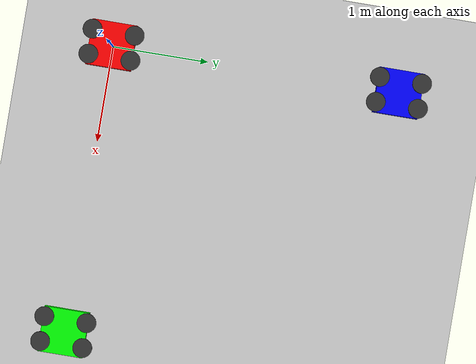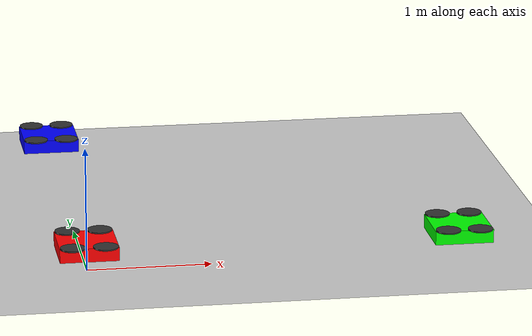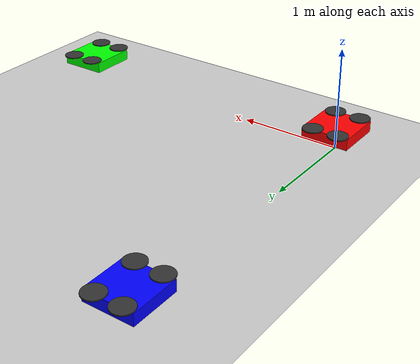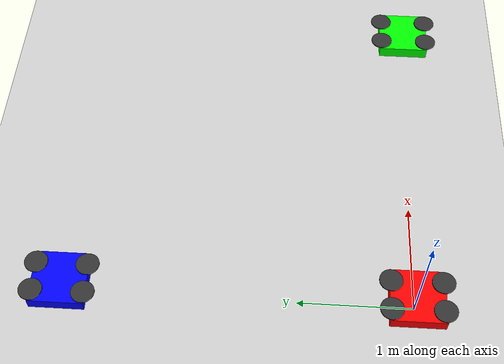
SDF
<?xml version="1.0"?>
<sdf version="1.8">
    <world name="default">

        <!-- Physics -->
        <physics name="4ms" type="ignored">
            <max_step_size>0.004</max_step_size>
            <real_time_factor>1.0</real_time_factor>
        </physics>

        <!-- Required World Plugins (Fortress naming) -->
        <plugin filename="ignition-gazebo-physics-system"
            name="ignition::gazebo::systems::Physics" />
        <plugin filename="ignition-gazebo-scene-broadcaster-system"
            name="ignition::gazebo::systems::SceneBroadcaster" />
        <plugin filename="ignition-gazebo-user-commands-system"
            name="ignition::gazebo::systems::UserCommands" />

        <!-- Lighting -->
        <light type="directional" name="sun">
            <cast_shadows>true</cast_shadows>
            <pose>0 0 10 0 0 0</pose>
            <diffuse>0.8 0.8 0.8 1</diffuse>
            <specular>0.2 0.2 0.2 1</specular>
            <direction>-0.5 0.1 -0.9</direction>
        </light>

        <!-- Ground Plane -->
        <model name="ground_plane">
            <static>true</static>
            <link name="link">
                <collision name="collision">
                    <geometry>
                        <plane>
                            <normal>0 0 1</normal>
                            <size>100 100</size>
                        </plane>
                    </geometry>
                </collision>
                <visual name="visual">
                    <geometry>
                        <plane>
                            <normal>0 0 1</normal>
                            <size>100 100</size>
                        </plane>
                    </geometry>
                    <material>
                        <ambient>0.8 0.8 0.8 1</ambient>
                    </material>
                </visual>
            </link>
        </model>

        <!-- ==================== DRONE 1 (RED) ==================== -->
        <model name="drone1">
            <pose>0 0 0.2 0 0 0</pose>

            <link name="base_link">
                <inertial>
                    <mass>1.5</mass>
                    <inertia>
                        <ixx>0.0291</ixx>
                        <ixy>0</ixy>
                        <ixz>0</ixz>
                        <iyy>0.0291</iyy>
                        <iyz>0</iyz>
                        <izz>0.0552</izz>
                    </inertia>
                </inertial>
                <collision name="collision">
                    <geometry>
                        <box>
                            <size>0.47 0.47 0.11</size>
                        </box>
                    </geometry>
                </collision>
                <visual name="visual">
                    <geometry>
                        <box>
                            <size>0.47 0.47 0.11</size>
                        </box>
                    </geometry>
                    <material>
                        <ambient>1 0 0 1</ambient>
                        <diffuse>1 0 0 1</diffuse>
                    </material>
                </visual>
            </link>

            <!-- Rotor 0 (Front-Right, CCW) -->
            <link name="rotor_0">
                <pose>0.13 -0.22 0.06 0 0 0</pose>
                <inertial>
                    <mass>0.005</mass>
                    <inertia>
                        <ixx>9.75e-07</ixx>
                        <ixy>0</ixy>
                        <ixz>0</ixz>
                        <iyy>8.13545e-05</iyy>
                        <iyz>0
                        </iyz>
                        <izz>8.22545e-05</izz>
                    </inertia>
                </inertial>
                <collision name="collision">
                    <geometry>
                        <cylinder>
                            <radius>0.1</radius>
                            <length>0.01
                            </length>
                        </cylinder>
                    </geometry>
                </collision>
                <visual name="visual">
                    <geometry>
                        <cylinder>
                            <radius>0.1</radius>
                            <length>0.01</length>
                        </cylinder>
                    </geometry>
                    <material>
                        <ambient>0.2 0.2 0.2 1</ambient>
                    </material>
                </visual>
            </link>
            <joint name="rotor_0_joint" type="revolute">
                <parent>base_link</parent>
                <child>rotor_0</child>
                <axis>
                    <xyz>0 0 1</xyz>
                    <limit>
                        <lower>-1e16</lower>
                        <upper>1e16</upper>
                    </limit>
                </axis>
            </joint>

            <!-- Rotor 1 (Rear-Left, CCW) -->
            <link name="rotor_1">
                <pose>-0.13 0.22 0.06 0 0 0</pose>
                <inertial>
                    <mass>0.005</mass>
                    <inertia>
                        <ixx>9.75e-07</ixx>
                        <ixy>0</ixy>
                        <ixz>0</ixz>
                        <iyy>8.13545e-05</iyy>
                        <iyz>0
                        </iyz>
                        <izz>8.22545e-05</izz>
                    </inertia>
                </inertial>
                <collision name="collision">
                    <geometry>
                        <cylinder>
                            <radius>0.1</radius>
                            <length>0.01
                            </length>
                        </cylinder>
                    </geometry>
                </collision>
                <visual name="visual">
                    <geometry>
                        <cylinder>
                            <radius>0.1</radius>
                            <length>0.01</length>

                        </cylinder>
                    </geometry>
                    <material>
                        <ambient>0.2 0.2 0.2 1</ambient>
                    </material>
                </visual>
            </link>
            <joint name="rotor_1_joint" type="revolute">
                <parent>base_link</parent>
                <child>rotor_1</child>
                <axis>
                    <xyz>0 0 1</xyz>
                    <limit>
                        <lower>-1e16</lower>
                        <upper>1e16</upper>
                    </limit>
                </axis>
            </joint>

            <!-- Rotor 2 (Front-Left, CW) -->
            <link name="rotor_2">
                <pose>0.13 0.22 0.06 0 0 0</pose>
                <inertial>
                    <mass>0.005</mass>
                    <inertia>
                        <ixx>9.75e-07</ixx>
                        <ixy>0</ixy>
                        <ixz>0</ixz>
                        <iyy>8.13545e-05</iyy>
                        <iyz>0
                        </iyz>
                        <izz>8.22545e-05</izz>
                    </inertia>
                </inertial>
                <collision name="collision">
                    <geometry>
                        <cylinder>
                            <radius>0.1</radius>
                            <length>0.01
                            </length>
                        </cylinder>
                    </geometry>
                </collision>
                <visual name="visual">
                    <geometry>
                        <cylinder>
                            <radius>0.1</radius>
                            <length>0.01</length>

                        </cylinder>
                    </geometry>
                    <material>
                        <ambient>0.2 0.2 0.2 1</ambient>
                    </material>
                </visual>
            </link>
            <joint name="rotor_2_joint" type="revolute">
                <parent>base_link</parent>
                <child>rotor_2</child>
                <axis>
                    <xyz>0 0 1</xyz>
                    <limit>
                        <lower>-1e16</lower>
                        <upper>1e16</upper>
                    </limit>
                </axis>
            </joint>

            <!-- Rotor 3 (Rear-Right, CW) -->
            <link name="rotor_3">
                <pose>-0.13 -0.22 0.06 0 0 0</pose>
                <inertial>
                    <mass>0.005</mass>
                    <inertia>
                        <ixx>9.75e-07</ixx>
                        <ixy>0</ixy>
                        <ixz>0</ixz>
                        <iyy>8.13545e-05</iyy>
                        <iyz>0
                        </iyz>
                        <izz>8.22545e-05</izz>
                    </inertia>
                </inertial>
                <collision name="collision">
                    <geometry>
                        <cylinder>
                            <radius>0.1</radius>
                            <length>0.01
                            </length>
                        </cylinder>
                    </geometry>
                </collision>
                <visual name="visual">
                    <geometry>
                        <cylinder>
                            <radius>0.1</radius>
                            <length>0.01</length>

                        </cylinder>
                    </geometry>
                    <material>
                        <ambient>0.2 0.2 0.2 1</ambient>
                    </material>
                </visual>
            </link>
            <joint name="rotor_3_joint" type="revolute">
                <parent>base_link</parent>
                <child>rotor_3</child>
                <axis>
                    <xyz>0 0 1</xyz>
                    <limit>
                        <lower>-1e16</lower>
                        <upper>1e16</upper>
                    </limit>
                </axis>
            </joint>

            <!-- Motor Model Plugins (one per rotor) -->
            <plugin filename="ignition-gazebo-multicopter-motor-model-system"
                name="ignition::gazebo::systems::MulticopterMotorModel">
                <jointName>rotor_0_joint</jointName>
                <linkName>rotor_0</linkName>
                <turningDirection>ccw</turningDirection>
                <timeConstantUp>0.0125</timeConstantUp>
                <timeConstantDown>0.025
                </timeConstantDown>
                <maxRotVelocity>800.0</maxRotVelocity>
                <motorConstant>8.54858e-06</motorConstant>
                <momentConstant>0.016
                </momentConstant>
                <commandSubTopic>command/motor_speed</commandSubTopic>
                <motorNumber>0</motorNumber>
                <rotorDragCoefficient>8.06428e-05</rotorDragCoefficient>
                <rollingMomentCoefficient>1e-06</rollingMomentCoefficient>

                <rotorVelocitySlowdownSim>10</rotorVelocitySlowdownSim>
                <motorType>velocity</motorType>
            </plugin>
            <plugin filename="ignition-gazebo-multicopter-motor-model-system"
                name="ignition::gazebo::systems::MulticopterMotorModel">
                <jointName>rotor_1_joint</jointName>
                <linkName>rotor_1</linkName>
                <turningDirection>ccw</turningDirection>
                <timeConstantUp>0.0125</timeConstantUp>
                <timeConstantDown>0.025
                </timeConstantDown>
                <maxRotVelocity>800.0</maxRotVelocity>
                <motorConstant>8.54858e-06</motorConstant>
                <momentConstant>0.016
                </momentConstant>
                <commandSubTopic>command/motor_speed</commandSubTopic>
                <motorNumber>1</motorNumber>
                <rotorDragCoefficient>8.06428e-05</rotorDragCoefficient>
                <rollingMomentCoefficient>1e-06</rollingMomentCoefficient>

                <rotorVelocitySlowdownSim>10</rotorVelocitySlowdownSim>
                <motorType>velocity</motorType>
            </plugin>
            <plugin filename="ignition-gazebo-multicopter-motor-model-system"
                name="ignition::gazebo::systems::MulticopterMotorModel">
                <jointName>rotor_2_joint</jointName>
                <linkName>rotor_2</linkName>
                <turningDirection>cw</turningDirection>
                <timeConstantUp>0.0125</timeConstantUp>
                <timeConstantDown>0.025
                </timeConstantDown>
                <maxRotVelocity>800.0</maxRotVelocity>
                <motorConstant>8.54858e-06</motorConstant>
                <momentConstant>0.016
                </momentConstant>
                <commandSubTopic>command/motor_speed</commandSubTopic>
                <motorNumber>2</motorNumber>
                <rotorDragCoefficient>8.06428e-05</rotorDragCoefficient>
                <rollingMomentCoefficient>1e-06</rollingMomentCoefficient>

                <rotorVelocitySlowdownSim>10</rotorVelocitySlowdownSim>
                <motorType>velocity</motorType>
            </plugin>
            <plugin filename="ignition-gazebo-multicopter-motor-model-system"
                name="ignition::gazebo::systems::MulticopterMotorModel">
                <jointName>rotor_3_joint</jointName>
                <linkName>rotor_3</linkName>
                <turningDirection>cw</turningDirection>
                <timeConstantUp>0.0125</timeConstantUp>
                <timeConstantDown>0.025
                </timeConstantDown>
                <maxRotVelocity>800.0</maxRotVelocity>
                <motorConstant>8.54858e-06</motorConstant>
                <momentConstant>0.016
                </momentConstant>
                <commandSubTopic>command/motor_speed</commandSubTopic>
                <motorNumber>3</motorNumber>
                <rotorDragCoefficient>8.06428e-05</rotorDragCoefficient>
                <rollingMomentCoefficient>1e-06</rollingMomentCoefficient>

                <rotorVelocitySlowdownSim>10</rotorVelocitySlowdownSim>
                <motorType>velocity</motorType>
            </plugin>

            <!-- Velocity Controller -->
            <plugin filename="ignition-gazebo-multicopter-control-system"
                name="ignition::gazebo::systems::MulticopterVelocityControl">
                <robotNamespace>drone1</robotNamespace>
                <commandSubTopic>cmd_vel</commandSubTopic>
                <enableSubTopic>enable</enableSubTopic>
                <comLinkName>base_link</comLinkName>
                <velocityGain>2.7 2.7 2.7</velocityGain>
                <attitudeGain>2 3 0.15</attitudeGain>
                <angularRateGain>0.4 0.52 0.18</angularRateGain>
                <maximumLinearVelocity>5 5 5</maximumLinearVelocity>
                <maximumAngularVelocity>3 3 3</maximumAngularVelocity>
                <rotorConfiguration>
                    <rotor>
                        <jointName>rotor_0_joint</jointName>
                        <forceConstant>8.54858e-06
                        </forceConstant>
                        <momentConstant>0.016</momentConstant>
                        <direction>1</direction>
                    </rotor>
                    <rotor>
                        <jointName>rotor_1_joint</jointName>
                        <forceConstant>8.54858e-06
                        </forceConstant>
                        <momentConstant>0.016</momentConstant>
                        <direction>1</direction>
                    </rotor>
                    <rotor>
                        <jointName>rotor_2_joint</jointName>
                        <forceConstant>8.54858e-06
                        </forceConstant>
                        <momentConstant>0.016</momentConstant>
                        <direction>-1</direction>
                    </rotor>
                    <rotor>
                        <jointName>rotor_3_joint</jointName>
                        <forceConstant>8.54858e-06
                        </forceConstant>
                        <momentConstant>0.016</momentConstant>
                        <direction>-1</direction>
                    </rotor>
                </rotorConfiguration>
            </plugin>

            <!-- Odometry Publisher -->
            <plugin filename="ignition-gazebo-odometry-publisher-system"
                name="ignition::gazebo::systems::OdometryPublisher">
                <odom_frame>world</odom_frame>
                <robot_base_frame>drone1/base_link</robot_base_frame>
                <odom_topic>/model/drone1/odometry</odom_topic>
                <odom_publish_frequency>50</odom_publish_frequency>
                <dimensions>3</dimensions>
            </plugin>
        </model>

        <!-- ==================== DRONE 2 (GREEN) ==================== -->
        <model name="drone2">
            <pose>3 0 0.2 0 0 0</pose>

            <link name="base_link">
                <inertial>
                    <mass>1.5</mass>
                    <inertia>
                        <ixx>0.0291</ixx>
                        <ixy>0</ixy>
                        <ixz>0</ixz>
                        <iyy>0.0291</iyy>
                        <iyz>0</iyz>
                        <izz>0.0552</izz>
                    </inertia>
                </inertial>
                <collision name="collision">
                    <geometry>
                        <box>
                            <size>0.47 0.47
                                0.11</size>
                        </box>
                    </geometry>
                </collision>
                <visual name="visual">
                    <geometry>
                        <box>
                            <size>0.47 0.47 0.11</size>
                        </box>
                    </geometry>
                    <material>
                        <ambient>0 1 0 1</ambient>
                        <diffuse>0 1 0 1</diffuse>
                    </material>
                </visual>
            </link>

            <link name="rotor_0">
                <pose>0.13 -0.22 0.06 0 0 0</pose>
                <inertial>
                    <mass>0.005</mass>
                    <inertia>
                        <ixx>9.75e-07</ixx>
                        <ixy>0</ixy>
                        <ixz>0</ixz>
                        <iyy>
                            8.13545e-05</iyy>
                        <iyz>0</iyz>
                        <izz>8.22545e-05</izz>
                    </inertia>
                </inertial>
                <collision name="collision">
                    <geometry>
                        <cylinder>
                            <radius>0.1</radius>
                            <length>0.01
                            </length>
                        </cylinder>
                    </geometry>
                </collision>
                <visual name="visual">
                    <geometry>
                        <cylinder>
                            <radius>0.1</radius>
                            <length>0.01</length>

                        </cylinder>
                    </geometry>
                    <material>
                        <ambient>0.2 0.2 0.2 1</ambient>
                    </material>
                </visual>
            </link>
            <joint name="rotor_0_joint"
                type="revolute">
                <parent>base_link</parent>
                <child>rotor_0</child>
                <axis>
                    <xyz>0 0
                        1</xyz>
                    <limit>
                        <lower>-1e16</lower>
                        <upper>1e16</upper>
                    </limit>
                </axis>
            </joint>

            <link name="rotor_1">
                <pose>-0.13 0.22 0.06 0 0 0</pose>
                <inertial>
                    <mass>0.005</mass>
                    <inertia>
                        <ixx>9.75e-07</ixx>
                        <ixy>0</ixy>
                        <ixz>0</ixz>
                        <iyy>
                            8.13545e-05</iyy>
                        <iyz>0</iyz>
                        <izz>8.22545e-05</izz>
                    </inertia>
                </inertial>
                <collision name="collision">
                    <geometry>
                        <cylinder>
                            <radius>0.1</radius>
                            <length>0.01
                            </length>
                        </cylinder>
                    </geometry>
                </collision>
                <visual name="visual">
                    <geometry>
                        <cylinder>
                            <radius>0.1</radius>
                            <length>0.01</length>

                        </cylinder>
                    </geometry>
                    <material>
                        <ambient>0.2 0.2 0.2 1</ambient>
                    </material>
                </visual>
            </link>
            <joint name="rotor_1_joint"
                type="revolute">
                <parent>base_link</parent>
                <child>rotor_1</child>
                <axis>
                    <xyz>0 0
                        1</xyz>
                    <limit>
                        <lower>-1e16</lower>
                        <upper>1e16</upper>
                    </limit>
                </axis>
            </joint>

            <link name="rotor_2">
                <pose>0.13 0.22 0.06 0 0 0</pose>
                <inertial>
                    <mass>0.005</mass>
                    <inertia>
                        <ixx>9.75e-07</ixx>
                        <ixy>0</ixy>
                        <ixz>0</ixz>
                        <iyy>
                            8.13545e-05</iyy>
                        <iyz>0</iyz>
                        <izz>8.22545e-05</izz>
                    </inertia>
                </inertial>
                <collision name="collision">
                    <geometry>
                        <cylinder>
                            <radius>0.1</radius>
                            <length>0.01
                            </length>
                        </cylinder>
                    </geometry>
                </collision>
                <visual name="visual">
                    <geometry>
                        <cylinder>
                            <radius>0.1</radius>
                            <length>0.01</length>

                        </cylinder>
                    </geometry>
                    <material>
                        <ambient>0.2 0.2 0.2 1</ambient>
                    </material>
                </visual>
            </link>
            <joint name="rotor_2_joint"
                type="revolute">
                <parent>base_link</parent>
                <child>rotor_2</child>
                <axis>
                    <xyz>0 0
                        1</xyz>
                    <limit>
                        <lower>-1e16</lower>
                        <upper>1e16</upper>
                    </limit>
                </axis>
            </joint>

            <link name="rotor_3">
                <pose>-0.13 -0.22 0.06 0 0 0</pose>
                <inertial>
                    <mass>0.005</mass>
                    <inertia>
                        <ixx>9.75e-07</ixx>
                        <ixy>0</ixy>
                        <ixz>0</ixz>
                        <iyy>
                            8.13545e-05</iyy>
                        <iyz>0</iyz>
                        <izz>8.22545e-05</izz>
                    </inertia>
                </inertial>
                <collision name="collision">
                    <geometry>
                        <cylinder>
                            <radius>0.1</radius>
                            <length>0.01
                            </length>
                        </cylinder>
                    </geometry>
                </collision>
                <visual name="visual">
                    <geometry>
                        <cylinder>
                            <radius>0.1</radius>
                            <length>0.01</length>

                        </cylinder>
                    </geometry>
                    <material>
                        <ambient>0.2 0.2 0.2 1</ambient>
                    </material>
                </visual>
            </link>
            <joint name="rotor_3_joint"
                type="revolute">
                <parent>base_link</parent>
                <child>rotor_3</child>
                <axis>
                    <xyz>0 0
                        1</xyz>
                    <limit>
                        <lower>-1e16</lower>
                        <upper>1e16</upper>
                    </limit>
                </axis>
            </joint>

            <plugin filename="ignition-gazebo-multicopter-motor-model-system"
                name="ignition::gazebo::systems::MulticopterMotorModel">
                <jointName>rotor_0_joint</jointName>
                <linkName>rotor_0</linkName>
                <turningDirection>ccw
                </turningDirection>
                <timeConstantUp>0.0125</timeConstantUp>
                <timeConstantDown>0.025
                </timeConstantDown>
                <maxRotVelocity>800.0</maxRotVelocity>
                <motorConstant>8.54858e-06</motorConstant>
                <momentConstant>0.016
                </momentConstant>
                <commandSubTopic>command/motor_speed</commandSubTopic>
                <motorNumber>0
                </motorNumber>
                <rotorDragCoefficient>8.06428e-05</rotorDragCoefficient>
                <rollingMomentCoefficient>1e-06
                </rollingMomentCoefficient>
                <rotorVelocitySlowdownSim>10
                </rotorVelocitySlowdownSim>
                <motorType>velocity</motorType>
            </plugin>
            <plugin filename="ignition-gazebo-multicopter-motor-model-system"
                name="ignition::gazebo::systems::MulticopterMotorModel">
                <jointName>rotor_1_joint</jointName>
                <linkName>rotor_1</linkName>
                <turningDirection>ccw
                </turningDirection>
                <timeConstantUp>0.0125</timeConstantUp>
                <timeConstantDown>0.025
                </timeConstantDown>
                <maxRotVelocity>800.0</maxRotVelocity>
                <motorConstant>8.54858e-06</motorConstant>
                <momentConstant>0.016
                </momentConstant>
                <commandSubTopic>command/motor_speed</commandSubTopic>
                <motorNumber>1
                </motorNumber>
                <rotorDragCoefficient>8.06428e-05</rotorDragCoefficient>
                <rollingMomentCoefficient>1e-06
                </rollingMomentCoefficient>
                <rotorVelocitySlowdownSim>10
                </rotorVelocitySlowdownSim>
                <motorType>velocity</motorType>
            </plugin>
            <plugin filename="ignition-gazebo-multicopter-motor-model-system"
                name="ignition::gazebo::systems::MulticopterMotorModel">
                <jointName>rotor_2_joint</jointName>
                <linkName>rotor_2</linkName>
                <turningDirection>cw
                </turningDirection>
                <timeConstantUp>0.0125</timeConstantUp>
                <timeConstantDown>0.025
                </timeConstantDown>
                <maxRotVelocity>800.0</maxRotVelocity>
                <motorConstant>8.54858e-06</motorConstant>
                <momentConstant>0.016
                </momentConstant>
                <commandSubTopic>command/motor_speed</commandSubTopic>
                <motorNumber>2
                </motorNumber>
                <rotorDragCoefficient>8.06428e-05</rotorDragCoefficient>
                <rollingMomentCoefficient>1e-06
                </rollingMomentCoefficient>
                <rotorVelocitySlowdownSim>10
                </rotorVelocitySlowdownSim>
                <motorType>velocity</motorType>
            </plugin>
            <plugin filename="ignition-gazebo-multicopter-motor-model-system"
                name="ignition::gazebo::systems::MulticopterMotorModel">
                <jointName>rotor_3_joint</jointName>
                <linkName>rotor_3</linkName>
                <turningDirection>cw
                </turningDirection>
                <timeConstantUp>0.0125</timeConstantUp>
                <timeConstantDown>0.025
                </timeConstantDown>
                <maxRotVelocity>800.0</maxRotVelocity>
                <motorConstant>8.54858e-06</motorConstant>
                <momentConstant>0.016
                </momentConstant>
                <commandSubTopic>command/motor_speed</commandSubTopic>
                <motorNumber>3
                </motorNumber>
                <rotorDragCoefficient>8.06428e-05</rotorDragCoefficient>
                <rollingMomentCoefficient>1e-06
                </rollingMomentCoefficient>
                <rotorVelocitySlowdownSim>10
                </rotorVelocitySlowdownSim>
                <motorType>velocity</motorType>
            </plugin>

            <plugin filename="ignition-gazebo-multicopter-control-system"
                name="ignition::gazebo::systems::MulticopterVelocityControl">
                <robotNamespace>drone2</robotNamespace>
                <commandSubTopic>cmd_vel</commandSubTopic>
                <enableSubTopic>enable
                </enableSubTopic>
                <comLinkName>base_link</comLinkName>
                <velocityGain>2.7 2.7 2.7</velocityGain>
                <attitudeGain>2 3
                    0.15</attitudeGain>
                <angularRateGain>0.4 0.52 0.18</angularRateGain>
                <maximumLinearVelocity>5 5 5</maximumLinearVelocity>
                <maximumAngularVelocity>3 3
                    3</maximumAngularVelocity>
                <rotorConfiguration>
                    <rotor>
                        <jointName>rotor_0_joint</jointName>
                        <forceConstant>8.54858e-06
                        </forceConstant>
                        <momentConstant>0.016</momentConstant>
                        <direction>1</direction>
                    </rotor>
                    <rotor>
                        <jointName>rotor_1_joint</jointName>
                        <forceConstant>8.54858e-06
                        </forceConstant>
                        <momentConstant>0.016</momentConstant>
                        <direction>1</direction>
                    </rotor>
                    <rotor>
                        <jointName>rotor_2_joint</jointName>
                        <forceConstant>8.54858e-06
                        </forceConstant>
                        <momentConstant>0.016</momentConstant>
                        <direction>-1</direction>
                    </rotor>
                    <rotor>
                        <jointName>rotor_3_joint</jointName>
                        <forceConstant>8.54858e-06
                        </forceConstant>
                        <momentConstant>0.016</momentConstant>
                        <direction>-1</direction>
                    </rotor>
                </rotorConfiguration>
            </plugin>

            <plugin filename="ignition-gazebo-odometry-publisher-system"
                name="ignition::gazebo::systems::OdometryPublisher">
                <odom_frame>world</odom_frame>
                <robot_base_frame>drone2/base_link</robot_base_frame>
                <odom_topic>/model/drone2/odometry</odom_topic>
                <odom_publish_frequency>50
                </odom_publish_frequency>
                <dimensions>3</dimensions>
            </plugin>
        </model>

        <!-- ==================== DRONE 3 (BLUE) ==================== -->
        <model name="drone3">
            <pose>0 3 0.2 0 0 0</pose>

            <link name="base_link">
                <inertial>
                    <mass>1.5</mass>
                    <inertia>
                        <ixx>0.0291</ixx>
                        <ixy>0</ixy>
                        <ixz>0</ixz>
                        <iyy>0.0291</iyy>
                        <iyz>0</iyz>
                        <izz>0.0552</izz>
                    </inertia>
                </inertial>
                <collision name="collision">
                    <geometry>
                        <box>
                            <size>0.47 0.47
                                0.11</size>
                        </box>
                    </geometry>
                </collision>
                <visual name="visual">
                    <geometry>
                        <box>
                            <size>0.47 0.47 0.11</size>
                        </box>
                    </geometry>
                    <material>
                        <ambient>0 0 1 1</ambient>
                        <diffuse>0 0 1 1</diffuse>
                    </material>
                </visual>
            </link>

            <link name="rotor_0">
                <pose>0.13 -0.22 0.06 0 0 0</pose>
                <inertial>
                    <mass>0.005</mass>
                    <inertia>
                        <ixx>9.75e-07</ixx>
                        <ixy>0</ixy>
                        <ixz>0</ixz>
                        <iyy>
                            8.13545e-05</iyy>
                        <iyz>0</iyz>
                        <izz>8.22545e-05</izz>
                    </inertia>
                </inertial>
                <collision name="collision">
                    <geometry>
                        <cylinder>
                            <radius>0.1</radius>
                            <length>0.01
                            </length>
                        </cylinder>
                    </geometry>
                </collision>
                <visual name="visual">
                    <geometry>
                        <cylinder>
                            <radius>0.1</radius>
                            <length>0.01</length>

                        </cylinder>
                    </geometry>
                    <material>
                        <ambient>0.2 0.2 0.2 1</ambient>
                    </material>
                </visual>
            </link>
            <joint name="rotor_0_joint"
                type="revolute">
                <parent>base_link</parent>
                <child>rotor_0</child>
                <axis>
                    <xyz>0 0
                        1</xyz>
                    <limit>
                        <lower>-1e16</lower>
                        <upper>1e16</upper>
                    </limit>
                </axis>
            </joint>

            <link name="rotor_1">
                <pose>-0.13 0.22 0.06 0 0 0</pose>
                <inertial>
                    <mass>0.005</mass>
                    <inertia>
                        <ixx>9.75e-07</ixx>
                        <ixy>0</ixy>
                        <ixz>0</ixz>
                        <iyy>
                            8.13545e-05</iyy>
                        <iyz>0</iyz>
                        <izz>8.22545e-05</izz>
                    </inertia>
                </inertial>
                <collision name="collision">
                    <geometry>
                        <cylinder>
                            <radius>0.1</radius>
                            <length>0.01
                            </length>
                        </cylinder>
                    </geometry>
                </collision>
                <visual name="visual">
                    <geometry>
                        <cylinder>
                            <radius>0.1</radius>
                            <length>0.01</length>

                        </cylinder>
                    </geometry>
                    <material>
                        <ambient>0.2 0.2 0.2 1</ambient>
                    </material>
                </visual>
            </link>
            <joint name="rotor_1_joint"
                type="revolute">
                <parent>base_link</parent>
                <child>rotor_1</child>
                <axis>
                    <xyz>0 0
                        1</xyz>
                    <limit>
                        <lower>-1e16</lower>
                        <upper>1e16</upper>
                    </limit>
                </axis>
            </joint>

            <link name="rotor_2">
                <pose>0.13 0.22 0.06 0 0 0</pose>
                <inertial>
                    <mass>0.005</mass>
                    <inertia>
                        <ixx>9.75e-07</ixx>
                        <ixy>0</ixy>
                        <ixz>0</ixz>
                        <iyy>
                            8.13545e-05</iyy>
                        <iyz>0</iyz>
                        <izz>8.22545e-05</izz>
                    </inertia>
                </inertial>
                <collision name="collision">
                    <geometry>
                        <cylinder>
                            <radius>0.1</radius>
                            <length>0.01
                            </length>
                        </cylinder>
                    </geometry>
                </collision>
                <visual name="visual">
                    <geometry>
                        <cylinder>
                            <radius>0.1</radius>
                            <length>0.01</length>

                        </cylinder>
                    </geometry>
                    <material>
                        <ambient>0.2 0.2 0.2 1</ambient>
                    </material>
                </visual>
            </link>
            <joint name="rotor_2_joint"
                type="revolute">
                <parent>base_link</parent>
                <child>rotor_2</child>
                <axis>
                    <xyz>0 0
                        1</xyz>
                    <limit>
                        <lower>-1e16</lower>
                        <upper>1e16</upper>
                    </limit>
                </axis>
            </joint>

            <link name="rotor_3">
                <pose>-0.13 -0.22 0.06 0 0 0</pose>
                <inertial>
                    <mass>0.005</mass>
                    <inertia>
                        <ixx>9.75e-07</ixx>
                        <ixy>0</ixy>
                        <ixz>0</ixz>
                        <iyy>
                            8.13545e-05</iyy>
                        <iyz>0</iyz>
                        <izz>8.22545e-05</izz>
                    </inertia>
                </inertial>
                <collision name="collision">
                    <geometry>
                        <cylinder>
                            <radius>0.1</radius>
                            <length>0.01
                            </length>
                        </cylinder>
                    </geometry>
                </collision>
                <visual name="visual">
                    <geometry>
                        <cylinder>
                            <radius>0.1</radius>
                            <length>0.01</length>

                        </cylinder>
                    </geometry>
                    <material>
                        <ambient>0.2 0.2 0.2 1</ambient>
                    </material>
                </visual>
            </link>
            <joint name="rotor_3_joint"
                type="revolute">
                <parent>base_link</parent>
                <child>rotor_3</child>
                <axis>
                    <xyz>0 0
                        1</xyz>
                    <limit>
                        <lower>-1e16</lower>
                        <upper>1e16</upper>
                    </limit>
                </axis>
            </joint>

            <plugin filename="ignition-gazebo-multicopter-motor-model-system"
                name="ignition::gazebo::systems::MulticopterMotorModel">
                <jointName>rotor_0_joint</jointName>
                <linkName>rotor_0</linkName>
                <turningDirection>ccw
                </turningDirection>
                <timeConstantUp>0.0125</timeConstantUp>
                <timeConstantDown>0.025
                </timeConstantDown>
                <maxRotVelocity>800.0</maxRotVelocity>
                <motorConstant>8.54858e-06</motorConstant>
                <momentConstant>0.016
                </momentConstant>
                <commandSubTopic>command/motor_speed</commandSubTopic>
                <motorNumber>0
                </motorNumber>
                <rotorDragCoefficient>8.06428e-05</rotorDragCoefficient>
                <rollingMomentCoefficient>1e-06
                </rollingMomentCoefficient>
                <rotorVelocitySlowdownSim>10
                </rotorVelocitySlowdownSim>
                <motorType>velocity</motorType>
            </plugin>
            <plugin filename="ignition-gazebo-multicopter-motor-model-system"
                name="ignition::gazebo::systems::MulticopterMotorModel">
                <jointName>rotor_1_joint</jointName>
                <linkName>rotor_1</linkName>
                <turningDirection>ccw
                </turningDirection>
                <timeConstantUp>0.0125</timeConstantUp>
                <timeConstantDown>0.025
                </timeConstantDown>
                <maxRotVelocity>800.0</maxRotVelocity>
                <motorConstant>8.54858e-06</motorConstant>
                <momentConstant>0.016
                </momentConstant>
                <commandSubTopic>command/motor_speed</commandSubTopic>
                <motorNumber>1
                </motorNumber>
                <rotorDragCoefficient>8.06428e-05</rotorDragCoefficient>
                <rollingMomentCoefficient>1e-06
                </rollingMomentCoefficient>
                <rotorVelocitySlowdownSim>10
                </rotorVelocitySlowdownSim>
                <motorType>velocity</motorType>
            </plugin>
            <plugin filename="ignition-gazebo-multicopter-motor-model-system"
                name="ignition::gazebo::systems::MulticopterMotorModel">
                <jointName>rotor_2_joint</jointName>
                <linkName>rotor_2</linkName>
                <turningDirection>cw
                </turningDirection>
                <timeConstantUp>0.0125</timeConstantUp>
                <timeConstantDown>0.025
                </timeConstantDown>
                <maxRotVelocity>800.0</maxRotVelocity>
                <motorConstant>8.54858e-06</motorConstant>
                <momentConstant>0.016
                </momentConstant>
                <commandSubTopic>command/motor_speed</commandSubTopic>
                <motorNumber>2
                </motorNumber>
                <rotorDragCoefficient>8.06428e-05</rotorDragCoefficient>
                <rollingMomentCoefficient>1e-06
                </rollingMomentCoefficient>
                <rotorVelocitySlowdownSim>10
                </rotorVelocitySlowdownSim>
                <motorType>velocity</motorType>
            </plugin>
            <plugin filename="ignition-gazebo-multicopter-motor-model-system"
                name="ignition::gazebo::systems::MulticopterMotorModel">
                <jointName>rotor_3_joint</jointName>
                <linkName>rotor_3</linkName>
                <turningDirection>cw
                </turningDirection>
                <timeConstantUp>0.0125</timeConstantUp>
                <timeConstantDown>0.025
                </timeConstantDown>
                <maxRotVelocity>800.0</maxRotVelocity>
                <motorConstant>8.54858e-06</motorConstant>
                <momentConstant>0.016
                </momentConstant>
                <commandSubTopic>command/motor_speed</commandSubTopic>
                <motorNumber>3
                </motorNumber>
                <rotorDragCoefficient>8.06428e-05</rotorDragCoefficient>
                <rollingMomentCoefficient>1e-06
                </rollingMomentCoefficient>
                <rotorVelocitySlowdownSim>10
                </rotorVelocitySlowdownSim>
                <motorType>velocity</motorType>
            </plugin>

            <plugin filename="ignition-gazebo-multicopter-control-system"
                name="ignition::gazebo::systems::MulticopterVelocityControl">
                <robotNamespace>drone3</robotNamespace>
                <commandSubTopic>cmd_vel</commandSubTopic>
                <enableSubTopic>enable
                </enableSubTopic>
                <comLinkName>base_link</comLinkName>
                <velocityGain>2.7 2.7 2.7</velocityGain>
                <attitudeGain>2 3
                    0.15</attitudeGain>
                <angularRateGain>0.4 0.52 0.18</angularRateGain>
                <maximumLinearVelocity>5 5 5</maximumLinearVelocity>
                <maximumAngularVelocity>3 3
                    3</maximumAngularVelocity>
                <rotorConfiguration>
                    <rotor>
                        <jointName>rotor_0_joint</jointName>
                        <forceConstant>8.54858e-06
                        </forceConstant>
                        <momentConstant>0.016</momentConstant>
                        <direction>1</direction>
                    </rotor>
                    <rotor>
                        <jointName>rotor_1_joint</jointName>
                        <forceConstant>8.54858e-06
                        </forceConstant>
                        <momentConstant>0.016</momentConstant>
                        <direction>1</direction>
                    </rotor>
                    <rotor>
                        <jointName>rotor_2_joint</jointName>
                        <forceConstant>8.54858e-06
                        </forceConstant>
                        <momentConstant>0.016</momentConstant>
                        <direction>-1</direction>
                    </rotor>
                    <rotor>
                        <jointName>rotor_3_joint</jointName>
                        <forceConstant>8.54858e-06
                        </forceConstant>
                        <momentConstant>0.016</momentConstant>
                        <direction>-1</direction>
                    </rotor>
                </rotorConfiguration>
            </plugin>

            <plugin filename="ignition-gazebo-odometry-publisher-system"
                name="ignition::gazebo::systems::OdometryPublisher">
                <odom_frame>world</odom_frame>
                <robot_base_frame>drone3/base_link</robot_base_frame>
                <odom_topic>/model/drone3/odometry</odom_topic>
                <odom_publish_frequency>50
                </odom_publish_frequency>
                <dimensions>3</dimensions>
            </plugin>
        </model>

    </world>
</sdf>
